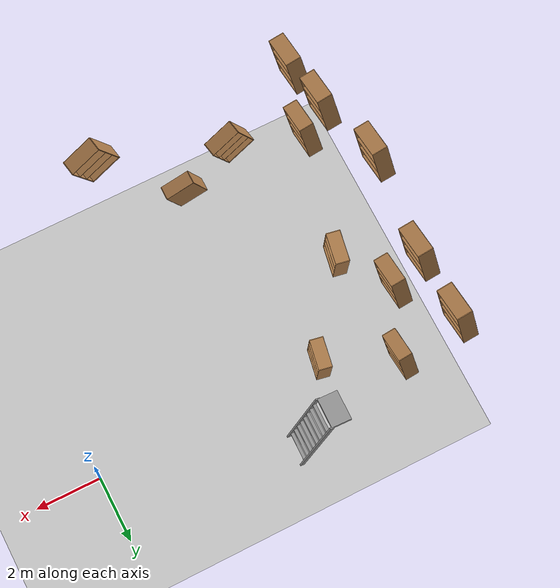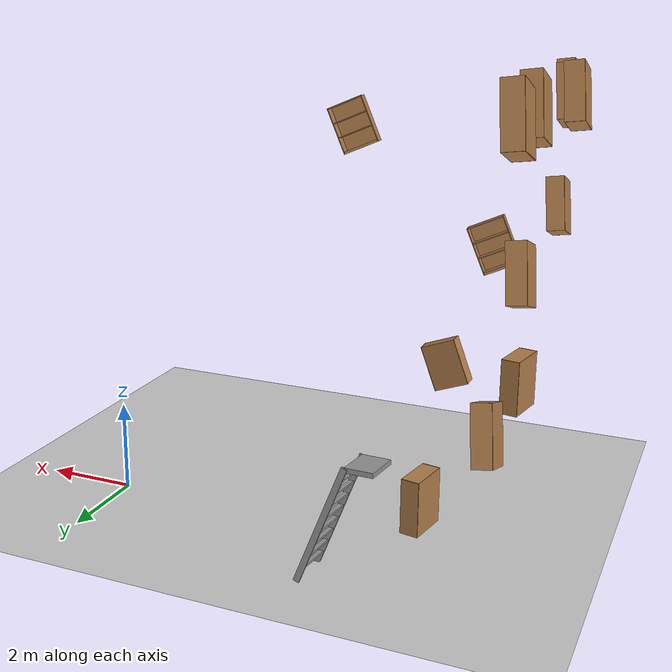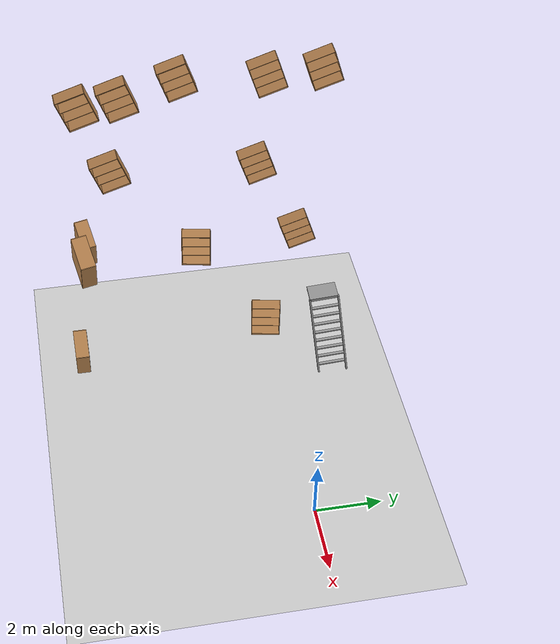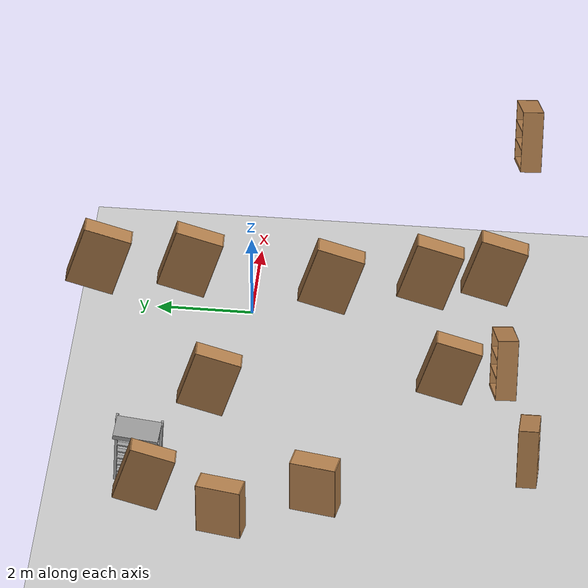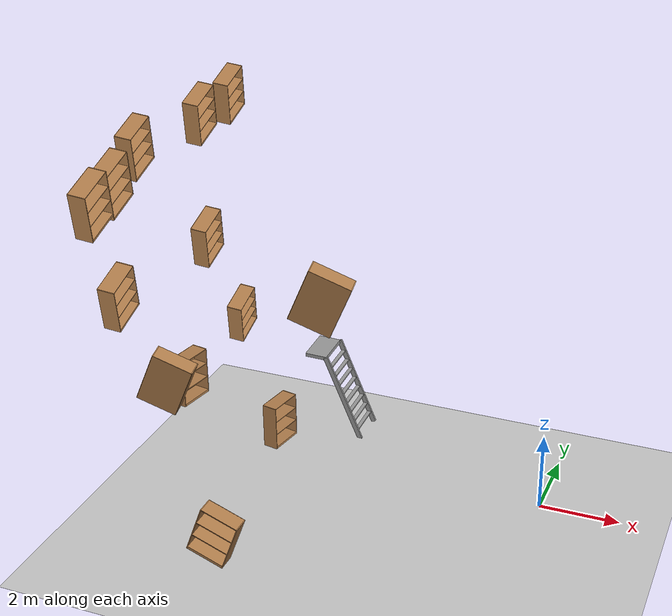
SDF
<sdf version="1.6">
 <world name="default">
  <model name="ground_plane">
   <static>1</static>
   <link name="link">
    <collision name="collision">
     <geometry><plane><normal>0 0 1</normal><size>100 100</size></plane></geometry>
     <surface><friction><ode><mu>100</mu><mu2>50</mu2></ode></friction></surface>
    </collision>
    <visual name="visual">
     <cast_shadows>0</cast_shadows>
     <geometry><plane><normal>0 0 1</normal><size>100 100</size></plane></geometry>
     <material>
      <script><uri>file://media/materials/scripts/gazebo.material</uri><name>Gazebo/Grey</name></script>
     </material>
    </visual>
   </link>
  </model>
  <model name="bookshelf_0_clone">
   <static>1</static>
   <link name="link">
    <inertial><mass>1</mass></inertial>
    <collision name="back">
     <pose>0 0.005 0.6 0 -0 0</pose>
     <geometry><box><size>0.9 0.01 1.2</size></box></geometry>
    </collision>
    <visual name="visual1">
     <pose>0 0.005 0.6 0 -0 0</pose>
     <geometry><box><size>0.9 0.01 1.2</size></box></geometry>
     <material>
      <script><uri>file://media/materials/scripts/gazebo.material</uri><name>Gazebo/Wood</name></script>
     </material>
    </visual>
    <collision name="left_side">
     <pose>0.45 -0.195 0.6 0 -0 0</pose>
     <geometry><box><size>0.02 0.4 1.2</size></box></geometry>
    </collision>
    <visual name="visual2">
     <pose>0.45 -0.195 0.6 0 -0 0</pose>
     <geometry><box><size>0.02 0.4 1.2</size></box></geometry>
     <material>
      <script><uri>file://media/materials/scripts/gazebo.material</uri><name>Gazebo/Wood</name></script>
     </material>
    </visual>
    <collision name="right_side">
     <pose>-0.45 -0.195 0.6 0 -0 0</pose>
     <geometry><box><size>0.02 0.4 1.2</size></box></geometry>
    </collision>
    <visual name="visual3">
     <pose>-0.45 -0.195 0.6 0 -0 0</pose>
     <geometry><box><size>0.02 0.4 1.2</size></box></geometry>
     <material>
      <script><uri>file://media/materials/scripts/gazebo.material</uri><name>Gazebo/Wood</name></script>
     </material>
    </visual>
    <collision name="bottom">
     <pose>0 -0.195 0.03 0 -0 0</pose>
     <geometry><box><size>0.88 0.4 0.06</size></box></geometry>
    </collision>
    <visual name="visual4">
     <pose>0 -0.195 0.03 0 -0 0</pose>
     <geometry><box><size>0.88 0.4 0.06</size></box></geometry>
     <material>
      <script><uri>file://media/materials/scripts/gazebo.material</uri><name>Gazebo/Wood</name></script>
     </material>
    </visual>
    <collision name="top">
     <pose>0 -0.195 1.19 0 -0 0</pose>
     <geometry><box><size>0.88 0.4 0.02</size></box></geometry>
    </collision>
    <visual name="visual5">
     <pose>0 -0.195 1.19 0 -0 0</pose>
     <geometry><box><size>0.88 0.4 0.02</size></box></geometry>
     <material>
      <script><uri>file://media/materials/scripts/gazebo.material</uri><name>Gazebo/Wood</name></script>
     </material>
    </visual>
    <collision name="low_shelf">
     <pose>0 -0.195 0.43 0 -0 0</pose>
     <geometry><box><size>0.88 0.4 0.02</size></box></geometry>
    </collision>
    <visual name="visual6">
     <pose>0 -0.195 0.43 0 -0 0</pose>
     <geometry><box><size>0.88 0.4 0.02</size></box></geometry>
     <material>
      <script><uri>file://media/materials/scripts/gazebo.material</uri><name>Gazebo/Wood</name></script>
     </material>
    </visual>
    <collision name="high_shelf">
     <pose>0 -0.195 0.8 0 -0 0</pose>
     <geometry><box><size>0.88 0.4 0.02</size></box></geometry>
    </collision>
    <visual name="visual7">
     <pose>0 -0.195 0.8 0 -0 0</pose>
     <geometry><box><size>0.88 0.4 0.02</size></box></geometry>
     <material>
      <script><uri>file://media/materials/scripts/gazebo.material</uri><name>Gazebo/Wood</name></script>
     </material>
    </visual>
   </link>
   <pose>-5.96629 -5.9266 1.27046 0 0.357608 0</pose>
  </model>
  <model name="bookshelf_0_clone_1_clone_2_clone_1">
   <static>1</static>
   <link name="link">
    <inertial><mass>1</mass></inertial>
    <collision name="back">
     <pose>0 0.005 0.6 0 -0 0</pose>
     <geometry><box><size>0.9 0.01 1.2</size></box></geometry>
    </collision>
    <visual name="visual1">
     <pose>0 0.005 0.6 0 -0 0</pose>
     <geometry><box><size>0.9 0.01 1.2</size></box></geometry>
     <material>
      <script><uri>file://media/materials/scripts/gazebo.material</uri><name>Gazebo/Wood</name></script>
     </material>
    </visual>
    <collision name="left_side">
     <pose>0.45 -0.195 0.6 0 -0 0</pose>
     <geometry><box><size>0.02 0.4 1.2</size></box></geometry>
    </collision>
    <visual name="visual2">
     <pose>0.45 -0.195 0.6 0 -0 0</pose>
     <geometry><box><size>0.02 0.4 1.2</size></box></geometry>
     <material>
      <script><uri>file://media/materials/scripts/gazebo.material</uri><name>Gazebo/Wood</name></script>
     </material>
    </visual>
    <collision name="right_side">
     <pose>-0.45 -0.195 0.6 0 -0 0</pose>
     <geometry><box><size>0.02 0.4 1.2</size></box></geometry>
    </collision>
    <visual name="visual3">
     <pose>-0.45 -0.195 0.6 0 -0 0</pose>
     <geometry><box><size>0.02 0.4 1.2</size></box></geometry>
     <material>
      <script><uri>file://media/materials/scripts/gazebo.material</uri><name>Gazebo/Wood</name></script>
     </material>
    </visual>
    <collision name="bottom">
     <pose>0 -0.195 0.03 0 -0 0</pose>
     <geometry><box><size>0.88 0.4 0.06</size></box></geometry>
    </collision>
    <visual name="visual4">
     <pose>0 -0.195 0.03 0 -0 0</pose>
     <geometry><box><size>0.88 0.4 0.06</size></box></geometry>
     <material>
      <script><uri>file://media/materials/scripts/gazebo.material</uri><name>Gazebo/Wood</name></script>
     </material>
    </visual>
    <collision name="top">
     <pose>0 -0.195 1.19 0 -0 0</pose>
     <geometry><box><size>0.88 0.4 0.02</size></box></geometry>
    </collision>
    <visual name="visual5">
     <pose>0 -0.195 1.19 0 -0 0</pose>
     <geometry><box><size>0.88 0.4 0.02</size></box></geometry>
     <material>
      <script><uri>file://media/materials/scripts/gazebo.material</uri><name>Gazebo/Wood</name></script>
     </material>
    </visual>
    <collision name="low_shelf">
     <pose>0 -0.195 0.43 0 -0 0</pose>
     <geometry><box><size>0.88 0.4 0.02</size></box></geometry>
    </collision>
    <visual name="visual6">
     <pose>0 -0.195 0.43 0 -0 0</pose>
     <geometry><box><size>0.88 0.4 0.02</size></box></geometry>
     <material>
      <script><uri>file://media/materials/scripts/gazebo.material</uri><name>Gazebo/Wood</name></script>
     </material>
    </visual>
    <collision name="high_shelf">
     <pose>0 -0.195 0.8 0 -0 0</pose>
     <geometry><box><size>0.88 0.4 0.02</size></box></geometry>
    </collision>
    <visual name="visual7">
     <pose>0 -0.195 0.8 0 -0 0</pose>
     <geometry><box><size>0.88 0.4 0.02</size></box></geometry>
     <material>
      <script><uri>file://media/materials/scripts/gazebo.material</uri><name>Gazebo/Wood</name></script>
     </material>
    </visual>
   </link>
   <pose>-8.86937 -4.51134 5.8851 0.126952 -0.31446 1.5878</pose>
  </model>
  <model name="ladder_70deg_0rails_0">
   <static>1</static>
   <link name="step0">
    <pose>0 0.097059 0.266667 0 -0 0</pose>
    <inertial>
     <mass>9.75482</mass>
     <inertia>
      <ixx>0.00957124</ixx>
      <iyy>0.65963</iyy>
      <izz>0.666842</izz>
      <ixy>0</ixy>
      <ixz>0</ixz>
      <iyz>0</iyz>
     </inertia>
    </inertial>
    <collision name="collision"><geometry><box><size>0.9 0.1016 0.0381</size></box></geometry></collision>
    <visual name="visual">
     <geometry><box><size>0.9 0.1016 0.0381</size></box></geometry>
     <material>
      <script><uri>file://media/materials/scripts/gazebo.material</uri><name>Gazebo/Grey</name></script>
     </material>
    </visual>
   </link>
   <link name="step1">
    <pose>0 0.194117 0.533333 0 -0 0</pose>
    <inertial>
     <mass>9.75482</mass>
     <inertia>
      <ixx>0.00957124</ixx>
      <iyy>0.65963</iyy>
      <izz>0.666842</izz>
      <ixy>0</ixy>
      <ixz>0</ixz>
      <iyz>0</iyz>
     </inertia>
    </inertial>
    <collision name="collision"><geometry><box><size>0.9 0.1016 0.0381</size></box></geometry></collision>
    <visual name="visual">
     <geometry><box><size>0.9 0.1016 0.0381</size></box></geometry>
     <material>
      <script><uri>file://media/materials/scripts/gazebo.material</uri><name>Gazebo/Grey</name></script>
     </material>
    </visual>
   </link>
   <link name="step2">
    <pose>0 0.291176 0.8 0 -0 0</pose>
    <inertial>
     <mass>9.75482</mass>
     <inertia>
      <ixx>0.00957124</ixx>
      <iyy>0.65963</iyy>
      <izz>0.666842</izz>
      <ixy>0</ixy>
      <ixz>0</ixz>
      <iyz>0</iyz>
     </inertia>
    </inertial>
    <collision name="collision"><geometry><box><size>0.9 0.1016 0.0381</size></box></geometry></collision>
    <visual name="visual">
     <geometry><box><size>0.9 0.1016 0.0381</size></box></geometry>
     <material>
      <script><uri>file://media/materials/scripts/gazebo.material</uri><name>Gazebo/Grey</name></script>
     </material>
    </visual>
   </link>
   <link name="step3">
    <pose>0 0.388235 1.06667 0 -0 0</pose>
    <inertial>
     <mass>9.75482</mass>
     <inertia>
      <ixx>0.00957124</ixx>
      <iyy>0.65963</iyy>
      <izz>0.666842</izz>
      <ixy>0</ixy>
      <ixz>0</ixz>
      <iyz>0</iyz>
     </inertia>
    </inertial>
    <collision name="collision"><geometry><box><size>0.9 0.1016 0.0381</size></box></geometry></collision>
    <visual name="visual">
     <geometry><box><size>0.9 0.1016 0.0381</size></box></geometry>
     <material>
      <script><uri>file://media/materials/scripts/gazebo.material</uri><name>Gazebo/Grey</name></script>
     </material>
    </visual>
   </link>
   <link name="step4">
    <pose>0 0.485294 1.33333 0 -0 0</pose>
    <inertial>
     <mass>9.75482</mass>
     <inertia>
      <ixx>0.00957124</ixx>
      <iyy>0.65963</iyy>
      <izz>0.666842</izz>
      <ixy>0</ixy>
      <ixz>0</ixz>
      <iyz>0</iyz>
     </inertia>
    </inertial>
    <collision name="collision"><geometry><box><size>0.9 0.1016 0.0381</size></box></geometry></collision>
    <visual name="visual">
     <geometry><box><size>0.9 0.1016 0.0381</size></box></geometry>
     <material>
      <script><uri>file://media/materials/scripts/gazebo.material</uri><name>Gazebo/Grey</name></script>
     </material>
    </visual>
   </link>
   <link name="step5">
    <pose>0 0.582352 1.6 0 -0 0</pose>
    <inertial>
     <mass>9.75482</mass>
     <inertia>
      <ixx>0.00957124</ixx>
      <iyy>0.65963</iyy>
      <izz>0.666842</izz>
      <ixy>0</ixy>
      <ixz>0</ixz>
      <iyz>0</iyz>
     </inertia>
    </inertial>
    <collision name="collision"><geometry><box><size>0.9 0.1016 0.0381</size></box></geometry></collision>
    <visual name="visual">
     <geometry><box><size>0.9 0.1016 0.0381</size></box></geometry>
     <material>
      <script><uri>file://media/materials/scripts/gazebo.material</uri><name>Gazebo/Grey</name></script>
     </material>
    </visual>
   </link>
   <link name="step6">
    <pose>0 0.679411 1.86667 0 -0 0</pose>
    <inertial>
     <mass>9.75482</mass>
     <inertia>
      <ixx>0.00957124</ixx>
      <iyy>0.65963</iyy>
      <izz>0.666842</izz>
      <ixy>0</ixy>
      <ixz>0</ixz>
      <iyz>0</iyz>
     </inertia>
    </inertial>
    <collision name="collision"><geometry><box><size>0.9 0.1016 0.0381</size></box></geometry></collision>
    <visual name="visual">
     <geometry><box><size>0.9 0.1016 0.0381</size></box></geometry>
     <material>
      <script><uri>file://media/materials/scripts/gazebo.material</uri><name>Gazebo/Grey</name></script>
     </material>
    </visual>
   </link>
   <link name="step7">
    <pose>0 0.77647 2.13333 0 -0 0</pose>
    <inertial>
     <mass>9.75482</mass>
     <inertia>
      <ixx>0.00957124</ixx>
      <iyy>0.65963</iyy>
      <izz>0.666842</izz>
      <ixy>0</ixy>
      <ixz>0</ixz>
      <iyz>0</iyz>
     </inertia>
    </inertial>
    <collision name="collision"><geometry><box><size>0.9 0.1016 0.0381</size></box></geometry></collision>
    <visual name="visual">
     <geometry><box><size>0.9 0.1016 0.0381</size></box></geometry>
     <material>
      <script><uri>file://media/materials/scripts/gazebo.material</uri><name>Gazebo/Grey</name></script>
     </material>
    </visual>
   </link>
   <link name="landing">
    <pose>0 1.17353 2.4 0 -0 0</pose>
    <inertial>
     <mass>57.6072</mass>
     <inertia><ixx>1.73518</ixx><iyy>3.89545</iyy><izz>5.6167</izz><ixy>0</ixy><ixz>0</ixz><iyz>0</iyz></inertia>
    </inertial>
    <collision name="collision"><geometry><box><size>0.9 0.6 0.1016</size></box></geometry></collision>
    <visual name="visual">
     <geometry><box><size>0.9 0.6 0.1016</size></box></geometry>
     <material>
      <script><uri>file://media/materials/scripts/gazebo.material</uri><name>Gazebo/Grey</name></script>
     </material>
    </visual>
   </link>
   <link name="left_side_wall">
    <pose>-0.45 0.436764 1.2 1.22173 -0 0</pose>
    <collision name="collision"><geometry><box><size>0.0508 2.63403 0.13</size></box></geometry></collision>
    <visual name="visual">
     <geometry><box><size>0.0508 2.63403 0.13</size></box></geometry>
     <material>
      <script><uri>file://media/materials/scripts/gazebo.material</uri><name>Gazebo/Grey</name></script>
     </material>
    </visual>
   </link>
   <link name="right_side_wall">
    <pose>0.45 0.436764 1.2 1.22173 -0 0</pose>
    <collision name="collision"><geometry><box><size>0.0508 2.63403 0.13</size></box></geometry></collision>
    <visual name="visual">
     <geometry><box><size>0.0508 2.63403 0.13</size></box></geometry>
     <material>
      <script><uri>file://media/materials/scripts/gazebo.material</uri><name>Gazebo/Grey</name></script>
     </material>
    </visual>
   </link>
   <pose>-5.33182 1.79132 -0 0.003408 -0.098795 1.53625</pose>
  </model>
  <model name="bookshelf_1_clone_1">
   <static>1</static>
   <link name="link">
    <inertial><mass>1</mass></inertial>
    <collision name="back">
     <pose>0 0.005 0.6 0 -0 0</pose>
     <geometry><box><size>0.9 0.01 1.2</size></box></geometry>
    </collision>
    <visual name="visual1">
     <pose>0 0.005 0.6 0 -0 0</pose>
     <geometry><box><size>0.9 0.01 1.2</size></box></geometry>
     <material>
      <script><uri>file://media/materials/scripts/gazebo.material</uri><name>Gazebo/Wood</name></script>
     </material>
    </visual>
    <collision name="left_side">
     <pose>0.45 -0.195 0.6 0 -0 0</pose>
     <geometry><box><size>0.02 0.4 1.2</size></box></geometry>
    </collision>
    <visual name="visual2">
     <pose>0.45 -0.195 0.6 0 -0 0</pose>
     <geometry><box><size>0.02 0.4 1.2</size></box></geometry>
     <material>
      <script><uri>file://media/materials/scripts/gazebo.material</uri><name>Gazebo/Wood</name></script>
     </material>
    </visual>
    <collision name="right_side">
     <pose>-0.45 -0.195 0.6 0 -0 0</pose>
     <geometry><box><size>0.02 0.4 1.2</size></box></geometry>
    </collision>
    <visual name="visual3">
     <pose>-0.45 -0.195 0.6 0 -0 0</pose>
     <geometry><box><size>0.02 0.4 1.2</size></box></geometry>
     <material>
      <script><uri>file://media/materials/scripts/gazebo.material</uri><name>Gazebo/Wood</name></script>
     </material>
    </visual>
    <collision name="bottom">
     <pose>0 -0.195 0.03 0 -0 0</pose>
     <geometry><box><size>0.88 0.4 0.06</size></box></geometry>
    </collision>
    <visual name="visual4">
     <pose>0 -0.195 0.03 0 -0 0</pose>
     <geometry><box><size>0.88 0.4 0.06</size></box></geometry>
     <material>
      <script><uri>file://media/materials/scripts/gazebo.material</uri><name>Gazebo/Wood</name></script>
     </material>
    </visual>
    <collision name="top">
     <pose>0 -0.195 1.19 0 -0 0</pose>
     <geometry><box><size>0.88 0.4 0.02</size></box></geometry>
    </collision>
    <visual name="visual5">
     <pose>0 -0.195 1.19 0 -0 0</pose>
     <geometry><box><size>0.88 0.4 0.02</size></box></geometry>
     <material>
      <script><uri>file://media/materials/scripts/gazebo.material</uri><name>Gazebo/Wood</name></script>
     </material>
    </visual>
    <collision name="low_shelf">
     <pose>0 -0.195 0.43 0 -0 0</pose>
     <geometry><box><size>0.88 0.4 0.02</size></box></geometry>
    </collision>
    <visual name="visual6">
     <pose>0 -0.195 0.43 0 -0 0</pose>
     <geometry><box><size>0.88 0.4 0.02</size></box></geometry>
     <material>
      <script><uri>file://media/materials/scripts/gazebo.material</uri><name>Gazebo/Wood</name></script>
     </material>
    </visual>
    <collision name="high_shelf">
     <pose>0 -0.195 0.8 0 -0 0</pose>
     <geometry><box><size>0.88 0.4 0.02</size></box></geometry>
    </collision>
    <visual name="visual7">
     <pose>0 -0.195 0.8 0 -0 0</pose>
     <geometry><box><size>0.88 0.4 0.02</size></box></geometry>
     <material>
      <script><uri>file://media/materials/scripts/gazebo.material</uri><name>Gazebo/Wood</name></script>
     </material>
    </visual>
   </link>
   <pose>-7.22424 -0.066241 0.408899 0 -0 1.38737</pose>
  </model>
  <model name="bookshelf_1_clone_2">
   <static>1</static>
   <link name="link">
    <inertial><mass>1</mass></inertial>
    <collision name="back">
     <pose>0 0.005 0.6 0 -0 0</pose>
     <geometry><box><size>0.9 0.01 1.2</size></box></geometry>
    </collision>
    <visual name="visual1">
     <pose>0 0.005 0.6 0 -0 0</pose>
     <geometry><box><size>0.9 0.01 1.2</size></box></geometry>
     <material>
      <script><uri>file://media/materials/scripts/gazebo.material</uri><name>Gazebo/Wood</name></script>
     </material>
    </visual>
    <collision name="left_side">
     <pose>0.45 -0.195 0.6 0 -0 0</pose>
     <geometry><box><size>0.02 0.4 1.2</size></box></geometry>
    </collision>
    <visual name="visual2">
     <pose>0.45 -0.195 0.6 0 -0 0</pose>
     <geometry><box><size>0.02 0.4 1.2</size></box></geometry>
     <material>
      <script><uri>file://media/materials/scripts/gazebo.material</uri><name>Gazebo/Wood</name></script>
     </material>
    </visual>
    <collision name="right_side">
     <pose>-0.45 -0.195 0.6 0 -0 0</pose>
     <geometry><box><size>0.02 0.4 1.2</size></box></geometry>
    </collision>
    <visual name="visual3">
     <pose>-0.45 -0.195 0.6 0 -0 0</pose>
     <geometry><box><size>0.02 0.4 1.2</size></box></geometry>
     <material>
      <script><uri>file://media/materials/scripts/gazebo.material</uri><name>Gazebo/Wood</name></script>
     </material>
    </visual>
    <collision name="bottom">
     <pose>0 -0.195 0.03 0 -0 0</pose>
     <geometry><box><size>0.88 0.4 0.06</size></box></geometry>
    </collision>
    <visual name="visual4">
     <pose>0 -0.195 0.03 0 -0 0</pose>
     <geometry><box><size>0.88 0.4 0.06</size></box></geometry>
     <material>
      <script><uri>file://media/materials/scripts/gazebo.material</uri><name>Gazebo/Wood</name></script>
     </material>
    </visual>
    <collision name="top">
     <pose>0 -0.195 1.19 0 -0 0</pose>
     <geometry><box><size>0.88 0.4 0.02</size></box></geometry>
    </collision>
    <visual name="visual5">
     <pose>0 -0.195 1.19 0 -0 0</pose>
     <geometry><box><size>0.88 0.4 0.02</size></box></geometry>
     <material>
      <script><uri>file://media/materials/scripts/gazebo.material</uri><name>Gazebo/Wood</name></script>
     </material>
    </visual>
    <collision name="low_shelf">
     <pose>0 -0.195 0.43 0 -0 0</pose>
     <geometry><box><size>0.88 0.4 0.02</size></box></geometry>
    </collision>
    <visual name="visual6">
     <pose>0 -0.195 0.43 0 -0 0</pose>
     <geometry><box><size>0.88 0.4 0.02</size></box></geometry>
     <material>
      <script><uri>file://media/materials/scripts/gazebo.material</uri><name>Gazebo/Wood</name></script>
     </material>
    </visual>
    <collision name="high_shelf">
     <pose>0 -0.195 0.8 0 -0 0</pose>
     <geometry><box><size>0.88 0.4 0.02</size></box></geometry>
    </collision>
    <visual name="visual7">
     <pose>0 -0.195 0.8 0 -0 0</pose>
     <geometry><box><size>0.88 0.4 0.02</size></box></geometry>
     <material>
      <script><uri>file://media/materials/scripts/gazebo.material</uri><name>Gazebo/Wood</name></script>
     </material>
    </visual>
   </link>
   <pose>-8.66352 -2.08742 2.5136 0 -0 1.38737</pose>
  </model>
  <model name="bookshelf_0_clone_1_clone_2_clone_2_clone">
   <static>1</static>
   <link name="link">
    <inertial><mass>1</mass></inertial>
    <collision name="back">
     <pose>0 0.005 0.6 0 -0 0</pose>
     <geometry><box><size>0.9 0.01 1.2</size></box></geometry>
    </collision>
    <visual name="visual1">
     <pose>0 0.005 0.6 0 -0 0</pose>
     <geometry><box><size>0.9 0.01 1.2</size></box></geometry>
     <material>
      <script><uri>file://media/materials/scripts/gazebo.material</uri><name>Gazebo/Wood</name></script>
     </material>
    </visual>
    <collision name="left_side">
     <pose>0.45 -0.195 0.6 0 -0 0</pose>
     <geometry><box><size>0.02 0.4 1.2</size></box></geometry>
    </collision>
    <visual name="visual2">
     <pose>0.45 -0.195 0.6 0 -0 0</pose>
     <geometry><box><size>0.02 0.4 1.2</size></box></geometry>
     <material>
      <script><uri>file://media/materials/scripts/gazebo.material</uri><name>Gazebo/Wood</name></script>
     </material>
    </visual>
    <collision name="right_side">
     <pose>-0.45 -0.195 0.6 0 -0 0</pose>
     <geometry><box><size>0.02 0.4 1.2</size></box></geometry>
    </collision>
    <visual name="visual3">
     <pose>-0.45 -0.195 0.6 0 -0 0</pose>
     <geometry><box><size>0.02 0.4 1.2</size></box></geometry>
     <material>
      <script><uri>file://media/materials/scripts/gazebo.material</uri><name>Gazebo/Wood</name></script>
     </material>
    </visual>
    <collision name="bottom">
     <pose>0 -0.195 0.03 0 -0 0</pose>
     <geometry><box><size>0.88 0.4 0.06</size></box></geometry>
    </collision>
    <visual name="visual4">
     <pose>0 -0.195 0.03 0 -0 0</pose>
     <geometry><box><size>0.88 0.4 0.06</size></box></geometry>
     <material>
      <script><uri>file://media/materials/scripts/gazebo.material</uri><name>Gazebo/Wood</name></script>
     </material>
    </visual>
    <collision name="top">
     <pose>0 -0.195 1.19 0 -0 0</pose>
     <geometry><box><size>0.88 0.4 0.02</size></box></geometry>
    </collision>
    <visual name="visual5">
     <pose>0 -0.195 1.19 0 -0 0</pose>
     <geometry><box><size>0.88 0.4 0.02</size></box></geometry>
     <material>
      <script><uri>file://media/materials/scripts/gazebo.material</uri><name>Gazebo/Wood</name></script>
     </material>
    </visual>
    <collision name="low_shelf">
     <pose>0 -0.195 0.43 0 -0 0</pose>
     <geometry><box><size>0.88 0.4 0.02</size></box></geometry>
    </collision>
    <visual name="visual6">
     <pose>0 -0.195 0.43 0 -0 0</pose>
     <geometry><box><size>0.88 0.4 0.02</size></box></geometry>
     <material>
      <script><uri>file://media/materials/scripts/gazebo.material</uri><name>Gazebo/Wood</name></script>
     </material>
    </visual>
    <collision name="high_shelf">
     <pose>0 -0.195 0.8 0 -0 0</pose>
     <geometry><box><size>0.88 0.4 0.02</size></box></geometry>
    </collision>
    <visual name="visual7">
     <pose>0 -0.195 0.8 0 -0 0</pose>
     <geometry><box><size>0.88 0.4 0.02</size></box></geometry>
     <material>
      <script><uri>file://media/materials/scripts/gazebo.material</uri><name>Gazebo/Wood</name></script>
     </material>
    </visual>
   </link>
   <pose>-9.10543 0.028914 5.43109 0.126952 -0.31446 1.5878</pose>
  </model>
  <model name="bookshelf_0_clone_1_clone_2_clone_2_clone_0">
   <static>1</static>
   <link name="link">
    <inertial><mass>1</mass></inertial>
    <collision name="back">
     <pose>0 0.005 0.6 0 -0 0</pose>
     <geometry><box><size>0.9 0.01 1.2</size></box></geometry>
    </collision>
    <visual name="visual1">
     <pose>0 0.005 0.6 0 -0 0</pose>
     <geometry><box><size>0.9 0.01 1.2</size></box></geometry>
     <material>
      <script><uri>file://media/materials/scripts/gazebo.material</uri><name>Gazebo/Wood</name></script>
     </material>
    </visual>
    <collision name="left_side">
     <pose>0.45 -0.195 0.6 0 -0 0</pose>
     <geometry><box><size>0.02 0.4 1.2</size></box></geometry>
    </collision>
    <visual name="visual2">
     <pose>0.45 -0.195 0.6 0 -0 0</pose>
     <geometry><box><size>0.02 0.4 1.2</size></box></geometry>
     <material>
      <script><uri>file://media/materials/scripts/gazebo.material</uri><name>Gazebo/Wood</name></script>
     </material>
    </visual>
    <collision name="right_side">
     <pose>-0.45 -0.195 0.6 0 -0 0</pose>
     <geometry><box><size>0.02 0.4 1.2</size></box></geometry>
    </collision>
    <visual name="visual3">
     <pose>-0.45 -0.195 0.6 0 -0 0</pose>
     <geometry><box><size>0.02 0.4 1.2</size></box></geometry>
     <material>
      <script><uri>file://media/materials/scripts/gazebo.material</uri><name>Gazebo/Wood</name></script>
     </material>
    </visual>
    <collision name="bottom">
     <pose>0 -0.195 0.03 0 -0 0</pose>
     <geometry><box><size>0.88 0.4 0.06</size></box></geometry>
    </collision>
    <visual name="visual4">
     <pose>0 -0.195 0.03 0 -0 0</pose>
     <geometry><box><size>0.88 0.4 0.06</size></box></geometry>
     <material>
      <script><uri>file://media/materials/scripts/gazebo.material</uri><name>Gazebo/Wood</name></script>
     </material>
    </visual>
    <collision name="top">
     <pose>0 -0.195 1.19 0 -0 0</pose>
     <geometry><box><size>0.88 0.4 0.02</size></box></geometry>
    </collision>
    <visual name="visual5">
     <pose>0 -0.195 1.19 0 -0 0</pose>
     <geometry><box><size>0.88 0.4 0.02</size></box></geometry>
     <material>
      <script><uri>file://media/materials/scripts/gazebo.material</uri><name>Gazebo/Wood</name></script>
     </material>
    </visual>
    <collision name="low_shelf">
     <pose>0 -0.195 0.43 0 -0 0</pose>
     <geometry><box><size>0.88 0.4 0.02</size></box></geometry>
    </collision>
    <visual name="visual6">
     <pose>0 -0.195 0.43 0 -0 0</pose>
     <geometry><box><size>0.88 0.4 0.02</size></box></geometry>
     <material>
      <script><uri>file://media/materials/scripts/gazebo.material</uri><name>Gazebo/Wood</name></script>
     </material>
    </visual>
    <collision name="high_shelf">
     <pose>0 -0.195 0.8 0 -0 0</pose>
     <geometry><box><size>0.88 0.4 0.02</size></box></geometry>
    </collision>
    <visual name="visual7">
     <pose>0 -0.195 0.8 0 -0 0</pose>
     <geometry><box><size>0.88 0.4 0.02</size></box></geometry>
     <material>
      <script><uri>file://media/materials/scripts/gazebo.material</uri><name>Gazebo/Wood</name></script>
     </material>
    </visual>
   </link>
   <pose>-9.01827 -4.12778 8.36332 0.126952 -0.31446 1.5878</pose>
  </model>
  <model name="bookshelf_0_clone_1_clone_2_clone_2_clone_1">
   <static>1</static>
   <link name="link">
    <inertial><mass>1</mass></inertial>
    <collision name="back">
     <pose>0 0.005 0.6 0 -0 0</pose>
     <geometry><box><size>0.9 0.01 1.2</size></box></geometry>
    </collision>
    <visual name="visual1">
     <pose>0 0.005 0.6 0 -0 0</pose>
     <geometry><box><size>0.9 0.01 1.2</size></box></geometry>
     <material>
      <script><uri>file://media/materials/scripts/gazebo.material</uri><name>Gazebo/Wood</name></script>
     </material>
    </visual>
    <collision name="left_side">
     <pose>0.45 -0.195 0.6 0 -0 0</pose>
     <geometry><box><size>0.02 0.4 1.2</size></box></geometry>
    </collision>
    <visual name="visual2">
     <pose>0.45 -0.195 0.6 0 -0 0</pose>
     <geometry><box><size>0.02 0.4 1.2</size></box></geometry>
     <material>
      <script><uri>file://media/materials/scripts/gazebo.material</uri><name>Gazebo/Wood</name></script>
     </material>
    </visual>
    <collision name="right_side">
     <pose>-0.45 -0.195 0.6 0 -0 0</pose>
     <geometry><box><size>0.02 0.4 1.2</size></box></geometry>
    </collision>
    <visual name="visual3">
     <pose>-0.45 -0.195 0.6 0 -0 0</pose>
     <geometry><box><size>0.02 0.4 1.2</size></box></geometry>
     <material>
      <script><uri>file://media/materials/scripts/gazebo.material</uri><name>Gazebo/Wood</name></script>
     </material>
    </visual>
    <collision name="bottom">
     <pose>0 -0.195 0.03 0 -0 0</pose>
     <geometry><box><size>0.88 0.4 0.06</size></box></geometry>
    </collision>
    <visual name="visual4">
     <pose>0 -0.195 0.03 0 -0 0</pose>
     <geometry><box><size>0.88 0.4 0.06</size></box></geometry>
     <material>
      <script><uri>file://media/materials/scripts/gazebo.material</uri><name>Gazebo/Wood</name></script>
     </material>
    </visual>
    <collision name="top">
     <pose>0 -0.195 1.19 0 -0 0</pose>
     <geometry><box><size>0.88 0.4 0.02</size></box></geometry>
    </collision>
    <visual name="visual5">
     <pose>0 -0.195 1.19 0 -0 0</pose>
     <geometry><box><size>0.88 0.4 0.02</size></box></geometry>
     <material>
      <script><uri>file://media/materials/scripts/gazebo.material</uri><name>Gazebo/Wood</name></script>
     </material>
    </visual>
    <collision name="low_shelf">
     <pose>0 -0.195 0.43 0 -0 0</pose>
     <geometry><box><size>0.88 0.4 0.02</size></box></geometry>
    </collision>
    <visual name="visual6">
     <pose>0 -0.195 0.43 0 -0 0</pose>
     <geometry><box><size>0.88 0.4 0.02</size></box></geometry>
     <material>
      <script><uri>file://media/materials/scripts/gazebo.material</uri><name>Gazebo/Wood</name></script>
     </material>
    </visual>
    <collision name="high_shelf">
     <pose>0 -0.195 0.8 0 -0 0</pose>
     <geometry><box><size>0.88 0.4 0.02</size></box></geometry>
    </collision>
    <visual name="visual7">
     <pose>0 -0.195 0.8 0 -0 0</pose>
     <geometry><box><size>0.88 0.4 0.02</size></box></geometry>
     <material>
      <script><uri>file://media/materials/scripts/gazebo.material</uri><name>Gazebo/Wood</name></script>
     </material>
    </visual>
   </link>
   <pose>-8.93656 1.35306 2.7064 0.126952 -0.31446 1.5878</pose>
  </model>
  <model name="bookshelf_0_clone_1_clone_2_clone_2_clone_4">
   <static>1</static>
   <link name="link">
    <inertial><mass>1</mass></inertial>
    <collision name="back">
     <pose>0 0.005 0.6 0 -0 0</pose>
     <geometry><box><size>0.9 0.01 1.2</size></box></geometry>
    </collision>
    <visual name="visual1">
     <pose>0 0.005 0.6 0 -0 0</pose>
     <geometry><box><size>0.9 0.01 1.2</size></box></geometry>
     <material>
      <script><uri>file://media/materials/scripts/gazebo.material</uri><name>Gazebo/Wood</name></script>
     </material>
    </visual>
    <collision name="left_side">
     <pose>0.45 -0.195 0.6 0 -0 0</pose>
     <geometry><box><size>0.02 0.4 1.2</size></box></geometry>
    </collision>
    <visual name="visual2">
     <pose>0.45 -0.195 0.6 0 -0 0</pose>
     <geometry><box><size>0.02 0.4 1.2</size></box></geometry>
     <material>
      <script><uri>file://media/materials/scripts/gazebo.material</uri><name>Gazebo/Wood</name></script>
     </material>
    </visual>
    <collision name="right_side">
     <pose>-0.45 -0.195 0.6 0 -0 0</pose>
     <geometry><box><size>0.02 0.4 1.2</size></box></geometry>
    </collision>
    <visual name="visual3">
     <pose>-0.45 -0.195 0.6 0 -0 0</pose>
     <geometry><box><size>0.02 0.4 1.2</size></box></geometry>
     <material>
      <script><uri>file://media/materials/scripts/gazebo.material</uri><name>Gazebo/Wood</name></script>
     </material>
    </visual>
    <collision name="bottom">
     <pose>0 -0.195 0.03 0 -0 0</pose>
     <geometry><box><size>0.88 0.4 0.06</size></box></geometry>
    </collision>
    <visual name="visual4">
     <pose>0 -0.195 0.03 0 -0 0</pose>
     <geometry><box><size>0.88 0.4 0.06</size></box></geometry>
     <material>
      <script><uri>file://media/materials/scripts/gazebo.material</uri><name>Gazebo/Wood</name></script>
     </material>
    </visual>
    <collision name="top">
     <pose>0 -0.195 1.19 0 -0 0</pose>
     <geometry><box><size>0.88 0.4 0.02</size></box></geometry>
    </collision>
    <visual name="visual5">
     <pose>0 -0.195 1.19 0 -0 0</pose>
     <geometry><box><size>0.88 0.4 0.02</size></box></geometry>
     <material>
      <script><uri>file://media/materials/scripts/gazebo.material</uri><name>Gazebo/Wood</name></script>
     </material>
    </visual>
    <collision name="low_shelf">
     <pose>0 -0.195 0.43 0 -0 0</pose>
     <geometry><box><size>0.88 0.4 0.02</size></box></geometry>
    </collision>
    <visual name="visual6">
     <pose>0 -0.195 0.43 0 -0 0</pose>
     <geometry><box><size>0.88 0.4 0.02</size></box></geometry>
     <material>
      <script><uri>file://media/materials/scripts/gazebo.material</uri><name>Gazebo/Wood</name></script>
     </material>
    </visual>
    <collision name="high_shelf">
     <pose>0 -0.195 0.8 0 -0 0</pose>
     <geometry><box><size>0.88 0.4 0.02</size></box></geometry>
    </collision>
    <visual name="visual7">
     <pose>0 -0.195 0.8 0 -0 0</pose>
     <geometry><box><size>0.88 0.4 0.02</size></box></geometry>
     <material>
      <script><uri>file://media/materials/scripts/gazebo.material</uri><name>Gazebo/Wood</name></script>
     </material>
    </visual>
   </link>
   <pose>-8.79786 -5.3053 8.36332 0.126952 -0.31446 1.5878</pose>
  </model>
  <model name="bookshelf_2_clone_clone_5">
   <static>1</static>
   <link name="link">
    <inertial><mass>1</mass></inertial>
    <collision name="back">
     <pose>0 0.005 0.6 0 -0 0</pose>
     <geometry><box><size>0.9 0.01 1.2</size></box></geometry>
    </collision>
    <visual name="visual1">
     <pose>0 0.005 0.6 0 -0 0</pose>
     <geometry><box><size>0.9 0.01 1.2</size></box></geometry>
     <material>
      <script><uri>file://media/materials/scripts/gazebo.material</uri><name>Gazebo/Wood</name></script>
     </material>
    </visual>
    <collision name="left_side">
     <pose>0.45 -0.195 0.6 0 -0 0</pose>
     <geometry><box><size>0.02 0.4 1.2</size></box></geometry>
    </collision>
    <visual name="visual2">
     <pose>0.45 -0.195 0.6 0 -0 0</pose>
     <geometry><box><size>0.02 0.4 1.2</size></box></geometry>
     <material>
      <script><uri>file://media/materials/scripts/gazebo.material</uri><name>Gazebo/Wood</name></script>
     </material>
    </visual>
    <collision name="right_side">
     <pose>-0.45 -0.195 0.6 0 -0 0</pose>
     <geometry><box><size>0.02 0.4 1.2</size></box></geometry>
    </collision>
    <visual name="visual3">
     <pose>-0.45 -0.195 0.6 0 -0 0</pose>
     <geometry><box><size>0.02 0.4 1.2</size></box></geometry>
     <material>
      <script><uri>file://media/materials/scripts/gazebo.material</uri><name>Gazebo/Wood</name></script>
     </material>
    </visual>
    <collision name="bottom">
     <pose>0 -0.195 0.03 0 -0 0</pose>
     <geometry><box><size>0.88 0.4 0.06</size></box></geometry>
    </collision>
    <visual name="visual4">
     <pose>0 -0.195 0.03 0 -0 0</pose>
     <geometry><box><size>0.88 0.4 0.06</size></box></geometry>
     <material>
      <script><uri>file://media/materials/scripts/gazebo.material</uri><name>Gazebo/Wood</name></script>
     </material>
    </visual>
    <collision name="top">
     <pose>0 -0.195 1.19 0 -0 0</pose>
     <geometry><box><size>0.88 0.4 0.02</size></box></geometry>
    </collision>
    <visual name="visual5">
     <pose>0 -0.195 1.19 0 -0 0</pose>
     <geometry><box><size>0.88 0.4 0.02</size></box></geometry>
     <material>
      <script><uri>file://media/materials/scripts/gazebo.material</uri><name>Gazebo/Wood</name></script>
     </material>
    </visual>
    <collision name="low_shelf">
     <pose>0 -0.195 0.43 0 -0 0</pose>
     <geometry><box><size>0.88 0.4 0.02</size></box></geometry>
    </collision>
    <visual name="visual6">
     <pose>0 -0.195 0.43 0 -0 0</pose>
     <geometry><box><size>0.88 0.4 0.02</size></box></geometry>
     <material>
      <script><uri>file://media/materials/scripts/gazebo.material</uri><name>Gazebo/Wood</name></script>
     </material>
    </visual>
    <collision name="high_shelf">
     <pose>0 -0.195 0.8 0 -0 0</pose>
     <geometry><box><size>0.88 0.4 0.02</size></box></geometry>
    </collision>
    <visual name="visual7">
     <pose>0 -0.195 0.8 0 -0 0</pose>
     <geometry><box><size>0.88 0.4 0.02</size></box></geometry>
     <material>
      <script><uri>file://media/materials/scripts/gazebo.material</uri><name>Gazebo/Wood</name></script>
     </material>
    </visual>
   </link>
   <pose>-3.46254 -6 7.27061 -0.077915 -0.400957 -2.94416</pose>
  </model>
  <model name="bookshelf_2_clone_clone_11">
   <static>1</static>
   <link name="link">
    <inertial><mass>1</mass></inertial>
    <collision name="back">
     <pose>0 0.005 0.6 0 -0 0</pose>
     <geometry><box><size>0.9 0.01 1.2</size></box></geometry>
    </collision>
    <visual name="visual1">
     <pose>0 0.005 0.6 0 -0 0</pose>
     <geometry><box><size>0.9 0.01 1.2</size></box></geometry>
     <material>
      <script><uri>file://media/materials/scripts/gazebo.material</uri><name>Gazebo/Wood</name></script>
     </material>
    </visual>
    <collision name="left_side">
     <pose>0.45 -0.195 0.6 0 -0 0</pose>
     <geometry><box><size>0.02 0.4 1.2</size></box></geometry>
    </collision>
    <visual name="visual2">
     <pose>0.45 -0.195 0.6 0 -0 0</pose>
     <geometry><box><size>0.02 0.4 1.2</size></box></geometry>
     <material>
      <script><uri>file://media/materials/scripts/gazebo.material</uri><name>Gazebo/Wood</name></script>
     </material>
    </visual>
    <collision name="right_side">
     <pose>-0.45 -0.195 0.6 0 -0 0</pose>
     <geometry><box><size>0.02 0.4 1.2</size></box></geometry>
    </collision>
    <visual name="visual3">
     <pose>-0.45 -0.195 0.6 0 -0 0</pose>
     <geometry><box><size>0.02 0.4 1.2</size></box></geometry>
     <material>
      <script><uri>file://media/materials/scripts/gazebo.material</uri><name>Gazebo/Wood</name></script>
     </material>
    </visual>
    <collision name="bottom">
     <pose>0 -0.195 0.03 0 -0 0</pose>
     <geometry><box><size>0.88 0.4 0.06</size></box></geometry>
    </collision>
    <visual name="visual4">
     <pose>0 -0.195 0.03 0 -0 0</pose>
     <geometry><box><size>0.88 0.4 0.06</size></box></geometry>
     <material>
      <script><uri>file://media/materials/scripts/gazebo.material</uri><name>Gazebo/Wood</name></script>
     </material>
    </visual>
    <collision name="top">
     <pose>0 -0.195 1.19 0 -0 0</pose>
     <geometry><box><size>0.88 0.4 0.02</size></box></geometry>
    </collision>
    <visual name="visual5">
     <pose>0 -0.195 1.19 0 -0 0</pose>
     <geometry><box><size>0.88 0.4 0.02</size></box></geometry>
     <material>
      <script><uri>file://media/materials/scripts/gazebo.material</uri><name>Gazebo/Wood</name></script>
     </material>
    </visual>
    <collision name="low_shelf">
     <pose>0 -0.195 0.43 0 -0 0</pose>
     <geometry><box><size>0.88 0.4 0.02</size></box></geometry>
    </collision>
    <visual name="visual6">
     <pose>0 -0.195 0.43 0 -0 0</pose>
     <geometry><box><size>0.88 0.4 0.02</size></box></geometry>
     <material>
      <script><uri>file://media/materials/scripts/gazebo.material</uri><name>Gazebo/Wood</name></script>
     </material>
    </visual>
    <collision name="high_shelf">
     <pose>0 -0.195 0.8 0 -0 0</pose>
     <geometry><box><size>0.88 0.4 0.02</size></box></geometry>
    </collision>
    <visual name="visual7">
     <pose>0 -0.195 0.8 0 -0 0</pose>
     <geometry><box><size>0.88 0.4 0.02</size></box></geometry>
     <material>
      <script><uri>file://media/materials/scripts/gazebo.material</uri><name>Gazebo/Wood</name></script>
     </material>
    </visual>
   </link>
   <pose>-7.1657 -5.82738 4.61008 -0.077915 -0.400957 -2.94416</pose>
  </model>
  <model name="bookshelf_0_clone_1_clone_2_clone_2_clone_clone">
   <static>1</static>
   <link name="link">
    <inertial><mass>1</mass></inertial>
    <collision name="back">
     <pose>0 0.005 0.6 0 -0 0</pose>
     <geometry><box><size>0.9 0.01 1.2</size></box></geometry>
    </collision>
    <visual name="visual1">
     <pose>0 0.005 0.6 0 -0 0</pose>
     <geometry><box><size>0.9 0.01 1.2</size></box></geometry>
     <material>
      <script><uri>file://media/materials/scripts/gazebo.material</uri><name>Gazebo/Wood</name></script>
     </material>
    </visual>
    <collision name="left_side">
     <pose>0.45 -0.195 0.6 0 -0 0</pose>
     <geometry><box><size>0.02 0.4 1.2</size></box></geometry>
    </collision>
    <visual name="visual2">
     <pose>0.45 -0.195 0.6 0 -0 0</pose>
     <geometry><box><size>0.02 0.4 1.2</size></box></geometry>
     <material>
      <script><uri>file://media/materials/scripts/gazebo.material</uri><name>Gazebo/Wood</name></script>
     </material>
    </visual>
    <collision name="right_side">
     <pose>-0.45 -0.195 0.6 0 -0 0</pose>
     <geometry><box><size>0.02 0.4 1.2</size></box></geometry>
    </collision>
    <visual name="visual3">
     <pose>-0.45 -0.195 0.6 0 -0 0</pose>
     <geometry><box><size>0.02 0.4 1.2</size></box></geometry>
     <material>
      <script><uri>file://media/materials/scripts/gazebo.material</uri><name>Gazebo/Wood</name></script>
     </material>
    </visual>
    <collision name="bottom">
     <pose>0 -0.195 0.03 0 -0 0</pose>
     <geometry><box><size>0.88 0.4 0.06</size></box></geometry>
    </collision>
    <visual name="visual4">
     <pose>0 -0.195 0.03 0 -0 0</pose>
     <geometry><box><size>0.88 0.4 0.06</size></box></geometry>
     <material>
      <script><uri>file://media/materials/scripts/gazebo.material</uri><name>Gazebo/Wood</name></script>
     </material>
    </visual>
    <collision name="top">
     <pose>0 -0.195 1.19 0 -0 0</pose>
     <geometry><box><size>0.88 0.4 0.02</size></box></geometry>
    </collision>
    <visual name="visual5">
     <pose>0 -0.195 1.19 0 -0 0</pose>
     <geometry><box><size>0.88 0.4 0.02</size></box></geometry>
     <material>
      <script><uri>file://media/materials/scripts/gazebo.material</uri><name>Gazebo/Wood</name></script>
     </material>
    </visual>
    <collision name="low_shelf">
     <pose>0 -0.195 0.43 0 -0 0</pose>
     <geometry><box><size>0.88 0.4 0.02</size></box></geometry>
    </collision>
    <visual name="visual6">
     <pose>0 -0.195 0.43 0 -0 0</pose>
     <geometry><box><size>0.88 0.4 0.02</size></box></geometry>
     <material>
      <script><uri>file://media/materials/scripts/gazebo.material</uri><name>Gazebo/Wood</name></script>
     </material>
    </visual>
    <collision name="high_shelf">
     <pose>0 -0.195 0.8 0 -0 0</pose>
     <geometry><box><size>0.88 0.4 0.02</size></box></geometry>
    </collision>
    <visual name="visual7">
     <pose>0 -0.195 0.8 0 -0 0</pose>
     <geometry><box><size>0.88 0.4 0.02</size></box></geometry>
     <material>
      <script><uri>file://media/materials/scripts/gazebo.material</uri><name>Gazebo/Wood</name></script>
     </material>
    </visual>
   </link>
   <pose>-9.51179 -2.32857 8.52987 0.126952 -0.31446 1.5878</pose>
  </model>
  <model name="bookshelf_0_clone_1_clone_2_clone_2_clone_clone_0">
   <static>1</static>
   <link name="link">
    <inertial><mass>1</mass></inertial>
    <collision name="back">
     <pose>0 0.005 0.6 0 -0 0</pose>
     <geometry><box><size>0.9 0.01 1.2</size></box></geometry>
    </collision>
    <visual name="visual1">
     <pose>0 0.005 0.6 0 -0 0</pose>
     <geometry><box><size>0.9 0.01 1.2</size></box></geometry>
     <material>
      <script><uri>file://media/materials/scripts/gazebo.material</uri><name>Gazebo/Wood</name></script>
     </material>
    </visual>
    <collision name="left_side">
     <pose>0.45 -0.195 0.6 0 -0 0</pose>
     <geometry><box><size>0.02 0.4 1.2</size></box></geometry>
    </collision>
    <visual name="visual2">
     <pose>0.45 -0.195 0.6 0 -0 0</pose>
     <geometry><box><size>0.02 0.4 1.2</size></box></geometry>
     <material>
      <script><uri>file://media/materials/scripts/gazebo.material</uri><name>Gazebo/Wood</name></script>
     </material>
    </visual>
    <collision name="right_side">
     <pose>-0.45 -0.195 0.6 0 -0 0</pose>
     <geometry><box><size>0.02 0.4 1.2</size></box></geometry>
    </collision>
    <visual name="visual3">
     <pose>-0.45 -0.195 0.6 0 -0 0</pose>
     <geometry><box><size>0.02 0.4 1.2</size></box></geometry>
     <material>
      <script><uri>file://media/materials/scripts/gazebo.material</uri><name>Gazebo/Wood</name></script>
     </material>
    </visual>
    <collision name="bottom">
     <pose>0 -0.195 0.03 0 -0 0</pose>
     <geometry><box><size>0.88 0.4 0.06</size></box></geometry>
    </collision>
    <visual name="visual4">
     <pose>0 -0.195 0.03 0 -0 0</pose>
     <geometry><box><size>0.88 0.4 0.06</size></box></geometry>
     <material>
      <script><uri>file://media/materials/scripts/gazebo.material</uri><name>Gazebo/Wood</name></script>
     </material>
    </visual>
    <collision name="top">
     <pose>0 -0.195 1.19 0 -0 0</pose>
     <geometry><box><size>0.88 0.4 0.02</size></box></geometry>
    </collision>
    <visual name="visual5">
     <pose>0 -0.195 1.19 0 -0 0</pose>
     <geometry><box><size>0.88 0.4 0.02</size></box></geometry>
     <material>
      <script><uri>file://media/materials/scripts/gazebo.material</uri><name>Gazebo/Wood</name></script>
     </material>
    </visual>
    <collision name="low_shelf">
     <pose>0 -0.195 0.43 0 -0 0</pose>
     <geometry><box><size>0.88 0.4 0.02</size></box></geometry>
    </collision>
    <visual name="visual6">
     <pose>0 -0.195 0.43 0 -0 0</pose>
     <geometry><box><size>0.88 0.4 0.02</size></box></geometry>
     <material>
      <script><uri>file://media/materials/scripts/gazebo.material</uri><name>Gazebo/Wood</name></script>
     </material>
    </visual>
    <collision name="high_shelf">
     <pose>0 -0.195 0.8 0 -0 0</pose>
     <geometry><box><size>0.88 0.4 0.02</size></box></geometry>
    </collision>
    <visual name="visual7">
     <pose>0 -0.195 0.8 0 -0 0</pose>
     <geometry><box><size>0.88 0.4 0.02</size></box></geometry>
     <material>
      <script><uri>file://media/materials/scripts/gazebo.material</uri><name>Gazebo/Wood</name></script>
     </material>
    </visual>
   </link>
   <pose>-9.27375 0.320749 8.52987 0.126952 -0.31446 1.5878</pose>
  </model>
  <model name="bookshelf_0_clone_1_clone_2_clone_2_clone_clone_1">
   <static>1</static>
   <link name="link">
    <inertial><mass>1</mass></inertial>
    <collision name="back">
     <pose>0 0.005 0.6 0 -0 0</pose>
     <geometry><box><size>0.9 0.01 1.2</size></box></geometry>
    </collision>
    <visual name="visual1">
     <pose>0 0.005 0.6 0 -0 0</pose>
     <geometry><box><size>0.9 0.01 1.2</size></box></geometry>
     <material>
      <script><uri>file://media/materials/scripts/gazebo.material</uri><name>Gazebo/Wood</name></script>
     </material>
    </visual>
    <collision name="left_side">
     <pose>0.45 -0.195 0.6 0 -0 0</pose>
     <geometry><box><size>0.02 0.4 1.2</size></box></geometry>
    </collision>
    <visual name="visual2">
     <pose>0.45 -0.195 0.6 0 -0 0</pose>
     <geometry><box><size>0.02 0.4 1.2</size></box></geometry>
     <material>
      <script><uri>file://media/materials/scripts/gazebo.material</uri><name>Gazebo/Wood</name></script>
     </material>
    </visual>
    <collision name="right_side">
     <pose>-0.45 -0.195 0.6 0 -0 0</pose>
     <geometry><box><size>0.02 0.4 1.2</size></box></geometry>
    </collision>
    <visual name="visual3">
     <pose>-0.45 -0.195 0.6 0 -0 0</pose>
     <geometry><box><size>0.02 0.4 1.2</size></box></geometry>
     <material>
      <script><uri>file://media/materials/scripts/gazebo.material</uri><name>Gazebo/Wood</name></script>
     </material>
    </visual>
    <collision name="bottom">
     <pose>0 -0.195 0.03 0 -0 0</pose>
     <geometry><box><size>0.88 0.4 0.06</size></box></geometry>
    </collision>
    <visual name="visual4">
     <pose>0 -0.195 0.03 0 -0 0</pose>
     <geometry><box><size>0.88 0.4 0.06</size></box></geometry>
     <material>
      <script><uri>file://media/materials/scripts/gazebo.material</uri><name>Gazebo/Wood</name></script>
     </material>
    </visual>
    <collision name="top">
     <pose>0 -0.195 1.19 0 -0 0</pose>
     <geometry><box><size>0.88 0.4 0.02</size></box></geometry>
    </collision>
    <visual name="visual5">
     <pose>0 -0.195 1.19 0 -0 0</pose>
     <geometry><box><size>0.88 0.4 0.02</size></box></geometry>
     <material>
      <script><uri>file://media/materials/scripts/gazebo.material</uri><name>Gazebo/Wood</name></script>
     </material>
    </visual>
    <collision name="low_shelf">
     <pose>0 -0.195 0.43 0 -0 0</pose>
     <geometry><box><size>0.88 0.4 0.02</size></box></geometry>
    </collision>
    <visual name="visual6">
     <pose>0 -0.195 0.43 0 -0 0</pose>
     <geometry><box><size>0.88 0.4 0.02</size></box></geometry>
     <material>
      <script><uri>file://media/materials/scripts/gazebo.material</uri><name>Gazebo/Wood</name></script>
     </material>
    </visual>
    <collision name="high_shelf">
     <pose>0 -0.195 0.8 0 -0 0</pose>
     <geometry><box><size>0.88 0.4 0.02</size></box></geometry>
    </collision>
    <visual name="visual7">
     <pose>0 -0.195 0.8 0 -0 0</pose>
     <geometry><box><size>0.88 0.4 0.02</size></box></geometry>
     <material>
      <script><uri>file://media/materials/scripts/gazebo.material</uri><name>Gazebo/Wood</name></script>
     </material>
    </visual>
   </link>
   <pose>-9.34999 2.02209 8.52987 0.126952 -0.31446 1.5878</pose>
  </model>
 </world>
</sdf>
